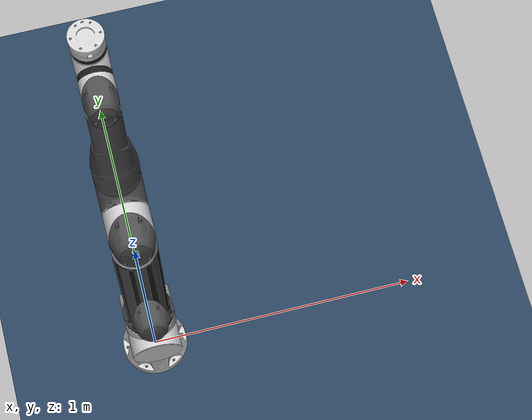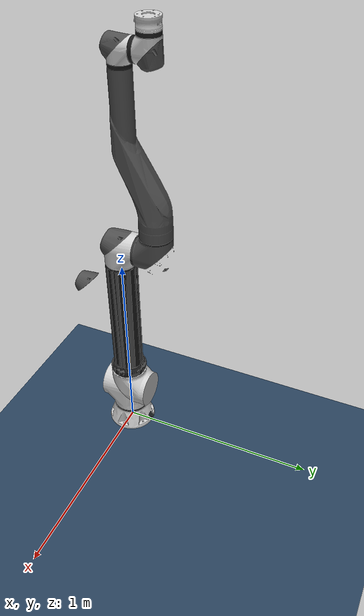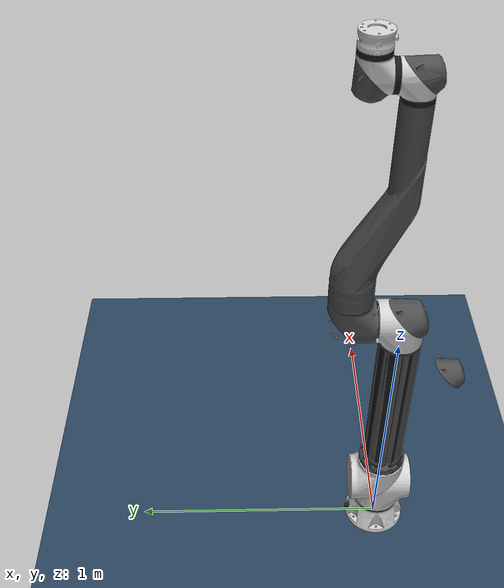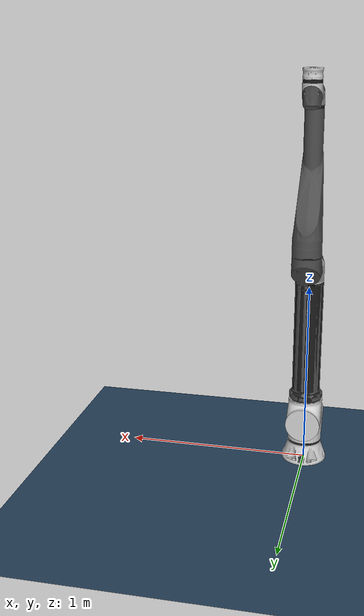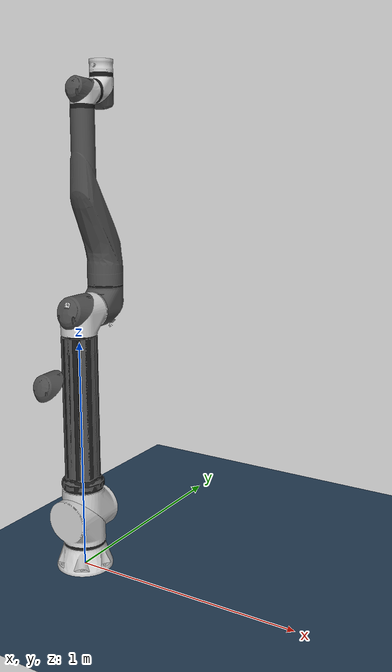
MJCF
<mujoco model="rb20_1900es_u">
  <compiler angle="radian" />
  <asset>
    <mesh name="link0" content_type="model/stl" file="../meshes/rb20_1900es_u/collision/link0.stl" />
    <mesh name="link1" content_type="model/stl" file="../meshes/rb20_1900es_u/collision/link1.stl" />
    <mesh name="link2" content_type="model/stl" file="../meshes/rb20_1900es_u/collision/link2.stl" />
    <mesh name="link3" content_type="model/stl" file="../meshes/rb20_1900es_u/collision/link3.stl" />
    <mesh name="link4" content_type="model/stl" file="../meshes/rb20_1900es_u/collision/link4.stl" />
    <mesh name="link5" content_type="model/stl" file="../meshes/rb20_1900es_u/collision/link5.stl" />
    <mesh name="link6" content_type="model/stl" file="../meshes/rb20_1900es_u/collision/link6.stl" />
    <texture type="skybox" builtin="gradient" rgb1="0.3 0.5 0.7" rgb2="0 0 0" width="512" height="3072" />
    <texture type="2d" name="groundplane" builtin="checker" mark="edge" rgb1="0.2 0.3 0.4" rgb2="0.1 0.2 0.3" markrgb="0.8 0.8 0.8" width="300" height="300" />
    <material name="groundplane" texture="groundplane" texuniform="true" texrepeat="5 5" reflectance="0.2" />
    <mesh name="link0_visual_0" file="../meshes/rb20_1900es_u/visual/link0_visual_0.obj" />
    <material name="link0_visual_0" rgba="0.3 0.3 0.3 1" specular="0" />
    <mesh name="link0_visual_1" file="../meshes/rb20_1900es_u/visual/link0_visual_1.obj" />
    <material name="link0_visual_1" rgba="0.0722719 0.0908417 0.0975874 1" specular="0" />
    <mesh name="link0_visual_2" file="../meshes/rb20_1900es_u/visual/link0_visual_2.obj" />
    <material name="link0_visual_2" rgba="0.8 0.8 0.8 1" specular="0" />
    <mesh name="link0_visual_3" file="../meshes/rb20_1900es_u/visual/link0_visual_3.obj" />
    <material name="link0_visual_3" rgba="0.8 0.8 0.8 1" specular="0" />
    <mesh name="link1_visual_0" file="../meshes/rb20_1900es_u/visual/link1_visual_0.obj" />
    <material name="link1_visual_0" rgba="0.1 0.1 0.1 1" specular="0" />
    <mesh name="link1_visual_1" file="../meshes/rb20_1900es_u/visual/link1_visual_1.obj" />
    <material name="link1_visual_1" rgba="0.3 0.3 0.3 1" specular="0" />
    <mesh name="link1_visual_2" file="../meshes/rb20_1900es_u/visual/link1_visual_2.obj" />
    <material name="link1_visual_2" rgba="0.8 0.8 0.8 1" specular="0" />
    <mesh name="link2_visual_0" file="../meshes/rb20_1900es_u/visual/link2_visual_0.obj" />
    <material name="link2_visual_0" rgba="0.1 0.1 0.1 1" specular="0" />
    <mesh name="link2_visual_1" file="../meshes/rb20_1900es_u/visual/link2_visual_1.obj" />
    <material name="link2_visual_1" rgba="0.8 0.8 0.8 1" specular="0" />
    <mesh name="link2_visual_2" file="../meshes/rb20_1900es_u/visual/link2_visual_2.obj" />
    <material name="link2_visual_2" rgba="0.8 0.8 0.8 1" specular="0" />
    <mesh name="link2_visual_3" file="../meshes/rb20_1900es_u/visual/link2_visual_3.obj" />
    <material name="link2_visual_3" rgba="0.3 0.3 0.3 1" specular="0" />
    <mesh name="link2_visual_4" file="../meshes/rb20_1900es_u/visual/link2_visual_4.obj" />
    <material name="link2_visual_4" rgba="0.3 0.3 0.3 1" specular="0" />
    <mesh name="link2_visual_5" file="../meshes/rb20_1900es_u/visual/link2_visual_5.obj" />
    <material name="link2_visual_5" rgba="0.3 0.3 0.3 1" specular="0" />
    <mesh name="link2_visual_6" file="../meshes/rb20_1900es_u/visual/link2_visual_6.obj" />
    <material name="link2_visual_6" rgba="0.3 0.3 0.3 1" specular="0" />
    <mesh name="link2_visual_7" file="../meshes/rb20_1900es_u/visual/link2_visual_7.obj" />
    <material name="link2_visual_7" rgba="0.1 0.1 0.1 1" specular="0" />
    <mesh name="link2_visual_8" file="../meshes/rb20_1900es_u/visual/link2_visual_8.obj" />
    <material name="link2_visual_8" rgba="0.8 0.8 0.8 1" specular="0" />
    <mesh name="link2_visual_9" file="../meshes/rb20_1900es_u/visual/link2_visual_9.obj" />
    <material name="link2_visual_9" rgba="0.3 0.3 0.3 1" specular="0" />
    <mesh name="link3_visual_0" file="../meshes/rb20_1900es_u/visual/link3_visual_0.obj" />
    <material name="link3_visual_0" rgba="0.1 0.1 0.1 1" specular="0" />
    <mesh name="link3_visual_1" file="../meshes/rb20_1900es_u/visual/link3_visual_1.obj" />
    <material name="link3_visual_1" rgba="0.8 0.8 0.8 1" specular="0" />
    <mesh name="link3_visual_2" file="../meshes/rb20_1900es_u/visual/link3_visual_2.obj" />
    <material name="link3_visual_2" rgba="0.3 0.3 0.3 1" specular="0" />
    <mesh name="link3_visual_3" file="../meshes/rb20_1900es_u/visual/link3_visual_3.obj" />
    <material name="link3_visual_3" rgba="0.3 0.3 0.3 1" specular="0" />
    <mesh name="link3_visual_4" file="../meshes/rb20_1900es_u/visual/link3_visual_4.obj" />
    <material name="link3_visual_4" rgba="0.3 0.3 0.3 1" specular="0" />
    <mesh name="link3_visual_5" file="../meshes/rb20_1900es_u/visual/link3_visual_5.obj" />
    <material name="link3_visual_5" rgba="0.3 0.3 0.3 1" specular="0" />
    <mesh name="link3_visual_6" file="../meshes/rb20_1900es_u/visual/link3_visual_6.obj" />
    <material name="link3_visual_6" rgba="0.3 0.3 0.3 1" specular="0" />
    <mesh name="link4_visual_0" file="../meshes/rb20_1900es_u/visual/link4_visual_0.obj" />
    <material name="link4_visual_0" rgba="0.1 0.1 0.1 1" specular="0" />
    <mesh name="link4_visual_1" file="../meshes/rb20_1900es_u/visual/link4_visual_1.obj" />
    <material name="link4_visual_1" rgba="0.3 0.3 0.3 1" specular="0" />
    <mesh name="link4_visual_2" file="../meshes/rb20_1900es_u/visual/link4_visual_2.obj" />
    <material name="link4_visual_2" rgba="0.8 0.8 0.8 1" specular="0" />
    <mesh name="link4_visual_3" file="../meshes/rb20_1900es_u/visual/link4_visual_3.obj" />
    <material name="link4_visual_3" rgba="0.3 0.3 0.3 1" specular="0" />
    <mesh name="link5_visual_0" file="../meshes/rb20_1900es_u/visual/link5_visual_0.obj" />
    <material name="link5_visual_0" rgba="0.1 0.1 0.1 1" specular="0" />
    <mesh name="link5_visual_1" file="../meshes/rb20_1900es_u/visual/link5_visual_1.obj" />
    <material name="link5_visual_1" rgba="0.3 0.3 0.3 1" specular="0" />
    <mesh name="link5_visual_2" file="../meshes/rb20_1900es_u/visual/link5_visual_2.obj" />
    <material name="link5_visual_2" rgba="0.8 0.8 0.8 1" specular="0" />
    <mesh name="link6_visual_0" file="../meshes/rb20_1900es_u/visual/link6_visual_0.obj" />
    <material name="link6_visual_0" rgba="0.8 0.8 0.8 1" specular="0" />
    <mesh name="link6_visual_1" file="../meshes/rb20_1900es_u/visual/link6_visual_1.obj" />
    <material name="link6_visual_1" rgba="0.8 0.8 0.8 1" specular="0" />
    <mesh name="link6_visual_2" file="../meshes/rb20_1900es_u/visual/link6_visual_2.obj" />
    <material name="link6_visual_2" rgba="0.8 0.8 0.8 1" specular="0" />
    <mesh name="link6_visual_3" file="../meshes/rb20_1900es_u/visual/link6_visual_3.obj" />
    <material name="link6_visual_3" rgba="0.3 0.3 0.3 1" specular="0" />
    <mesh name="link6_visual_4" file="../meshes/rb20_1900es_u/visual/link6_visual_4.obj" />
    <material name="link6_visual_4" rgba="0.8 0.8 0.8 1" specular="0" />
  </asset>
  <worldbody>
    <body name="link0" gravcomp="1">
      <geom type="mesh" mesh="link0" group="3" />
      <body name="link1" pos="0 0 0.241" gravcomp="1">
        <inertial pos="0 -0.008 -0.056" quat="0.698775 0.108231 -0.108231 0.698775" mass="15.48" diaginertia="0.0859043 0.084 0.0650957" />
        <joint name="base" pos="0 0 0" axis="0 0 1" range="-6.28318530717959 6.28318530717959" />
        <geom type="mesh" mesh="link1" group="3" />
        <body name="link2" gravcomp="1">
          <inertial pos="0 -0.217 0.341" quat="0.999936 0.0113013 0 0" mass="32.79" diaginertia="4.81 4.77535 0.172649" />
          <joint name="shoulder" pos="0 0 0" axis="0 1 0" range="-6.28318530717959 6.28318530717959" />
          <geom type="mesh" mesh="link2" group="3" />
          <body name="link3" pos="0 0 0.885" gravcomp="1">
            <inertial pos="0 -0.008 0.042" quat="0.672912 -0.217231 0.217231 0.672912" mass="8.371" diaginertia="0.0301623 0.027 0.0238377" />
            <joint name="elbow" pos="0 0 0" axis="0 1 0" range="-2.61799387799149 2.61799387799149" />
            <geom type="mesh" mesh="link3" group="3" />
            <body name="link4" pos="0 0.1875 0" gravcomp="1">
              <inertial pos="0 -0.068 0.505" quat="0.997269 0.0738541 0 0" mass="8.14" diaginertia="0.718 0.710744 0.031256" />
              <joint name="wrist1" pos="0 0 0" axis="0 0 1" range="-6.28318530717959 6.28318530717959" />
              <geom type="mesh" mesh="link4" group="3" />
              <body name="link5" pos="0 -0.1292 0.885" gravcomp="1">
                <inertial pos="0 0 0.035" mass="1.924" diaginertia="0.002 0.002 0.002" />
                <joint name="wrist2" pos="0 0 0" axis="0 1 0" range="-6.28318530717959 6.28318530717959" />
                <geom type="mesh" mesh="link5" group="3" />
                <body name="link6" pos="0 0.1292 0" gravcomp="1">
                  <inertial pos="0 0 0.104" mass="0.588" diaginertia="0.001 0.001 0.001" />
                  <joint name="wrist3" pos="0 0 0" axis="0 0 1" range="-6.28318530717959 6.28318530717959" />
                  <geom type="mesh" mesh="link6" group="3" />
                  <body name="tcp" pos="0 0 0.13" gravcomp="1" />
                  <geom type="mesh" mesh="link6_visual_0" material="link6_visual_0" group="2" contype="0" conaffinity="0" density="0" />
                  <geom type="mesh" mesh="link6_visual_1" material="link6_visual_1" group="2" contype="0" conaffinity="0" density="0" />
                  <geom type="mesh" mesh="link6_visual_2" material="link6_visual_2" group="2" contype="0" conaffinity="0" density="0" />
                  <geom type="mesh" mesh="link6_visual_3" material="link6_visual_3" group="2" contype="0" conaffinity="0" density="0" />
                  <geom type="mesh" mesh="link6_visual_4" material="link6_visual_4" group="2" contype="0" conaffinity="0" density="0" />
                </body>
                <geom type="mesh" mesh="link5_visual_0" material="link5_visual_0" group="2" contype="0" conaffinity="0" density="0" />
                <geom type="mesh" mesh="link5_visual_1" material="link5_visual_1" group="2" contype="0" conaffinity="0" density="0" />
                <geom type="mesh" mesh="link5_visual_2" material="link5_visual_2" group="2" contype="0" conaffinity="0" density="0" />
              </body>
              <geom type="mesh" mesh="link4_visual_0" material="link4_visual_0" group="2" contype="0" conaffinity="0" density="0" />
              <geom type="mesh" mesh="link4_visual_1" material="link4_visual_1" group="2" contype="0" conaffinity="0" density="0" />
              <geom type="mesh" mesh="link4_visual_2" material="link4_visual_2" group="2" contype="0" conaffinity="0" density="0" />
              <geom type="mesh" mesh="link4_visual_3" material="link4_visual_3" group="2" contype="0" conaffinity="0" density="0" />
            </body>
            <geom type="mesh" mesh="link3_visual_0" material="link3_visual_0" group="2" contype="0" conaffinity="0" density="0" />
            <geom type="mesh" mesh="link3_visual_1" material="link3_visual_1" group="2" contype="0" conaffinity="0" density="0" />
            <geom type="mesh" mesh="link3_visual_2" material="link3_visual_2" group="2" contype="0" conaffinity="0" density="0" />
            <geom type="mesh" mesh="link3_visual_3" material="link3_visual_3" group="2" contype="0" conaffinity="0" density="0" />
            <geom type="mesh" mesh="link3_visual_4" material="link3_visual_4" group="2" contype="0" conaffinity="0" density="0" />
            <geom type="mesh" mesh="link3_visual_5" material="link3_visual_5" group="2" contype="0" conaffinity="0" density="0" />
            <geom type="mesh" mesh="link3_visual_6" material="link3_visual_6" group="2" contype="0" conaffinity="0" density="0" />
          </body>
          <geom type="mesh" mesh="link2_visual_0" material="link2_visual_0" group="2" contype="0" conaffinity="0" density="0" />
          <geom type="mesh" mesh="link2_visual_1" material="link2_visual_1" group="2" contype="0" conaffinity="0" density="0" />
          <geom type="mesh" mesh="link2_visual_2" material="link2_visual_2" group="2" contype="0" conaffinity="0" density="0" />
          <geom type="mesh" mesh="link2_visual_3" material="link2_visual_3" group="2" contype="0" conaffinity="0" density="0" />
          <geom type="mesh" mesh="link2_visual_4" material="link2_visual_4" group="2" contype="0" conaffinity="0" density="0" />
          <geom type="mesh" mesh="link2_visual_5" material="link2_visual_5" group="2" contype="0" conaffinity="0" density="0" />
          <geom type="mesh" mesh="link2_visual_6" material="link2_visual_6" group="2" contype="0" conaffinity="0" density="0" />
          <geom type="mesh" mesh="link2_visual_7" material="link2_visual_7" group="2" contype="0" conaffinity="0" density="0" />
          <geom type="mesh" mesh="link2_visual_8" material="link2_visual_8" group="2" contype="0" conaffinity="0" density="0" />
          <geom type="mesh" mesh="link2_visual_9" material="link2_visual_9" group="2" contype="0" conaffinity="0" density="0" />
        </body>
        <geom type="mesh" mesh="link1_visual_0" material="link1_visual_0" group="2" contype="0" conaffinity="0" density="0" />
        <geom type="mesh" mesh="link1_visual_1" material="link1_visual_1" group="2" contype="0" conaffinity="0" density="0" />
        <geom type="mesh" mesh="link1_visual_2" material="link1_visual_2" group="2" contype="0" conaffinity="0" density="0" />
      </body>
      <geom type="mesh" mesh="link0_visual_0" material="link0_visual_0" group="2" contype="0" conaffinity="0" density="0" />
      <geom type="mesh" mesh="link0_visual_1" material="link0_visual_1" group="2" contype="0" conaffinity="0" density="0" />
      <geom type="mesh" mesh="link0_visual_2" material="link0_visual_2" group="2" contype="0" conaffinity="0" density="0" />
      <geom type="mesh" mesh="link0_visual_3" material="link0_visual_3" group="2" contype="0" conaffinity="0" density="0" />
    </body>
    <light pos="0 0 4" dir="0 0 -1" directional="true" />
    <geom name="floor" type="plane" size="0 0 0.05" material="groundplane" />
  </worldbody>
  <option timestep="0.0005" integrator="implicitfast" />
  <visual>
    <headlight diffuse="0.6 0.6 0.6" ambient="0.3 0.3 0.3" specular="0 0 0" />
    <rgba haze="0.15 0.25 0.35 1" />
    <global azimuth="140" elevation="-20" />
  </visual>
  <contact>
    <exclude body1="link0" body2="link1" />
  </contact>
  <statistic center="0 0.070749994 1.0705" extent="2.1893581" />
  <actuator>
    <position name="base" joint="base" kp="2000" dampratio="2" ctrlrange="-6.28318530717959 6.28318530717959" />
    <position name="shoulder" joint="shoulder" kp="2000" dampratio="2" ctrlrange="-6.28318530717959 6.28318530717959" />
    <position name="elbow" joint="elbow" kp="2000" dampratio="2" ctrlrange="-2.61799387799149 2.61799387799149" />
    <position name="wrist1" joint="wrist1" kp="2000" dampratio="2" ctrlrange="-6.28318530717959 6.28318530717959" />
    <position name="wrist2" joint="wrist2" kp="2000" dampratio="2" ctrlrange="-6.28318530717959 6.28318530717959" />
    <position name="wrist3" joint="wrist3" kp="2000" dampratio="2" ctrlrange="-6.28318530717959 6.28318530717959" />
  </actuator>
</mujoco>
